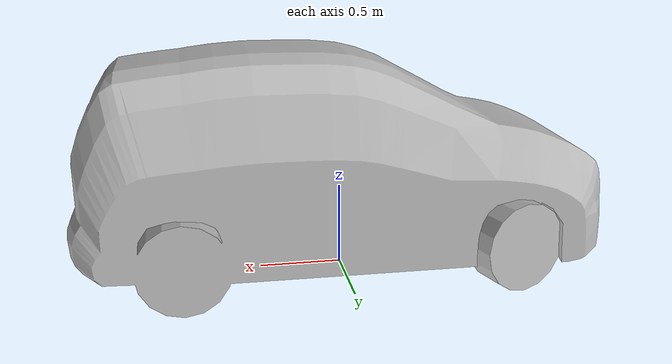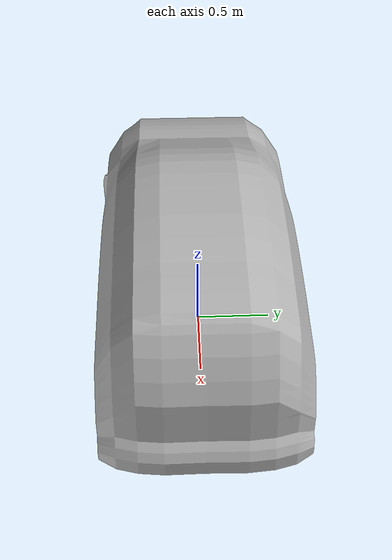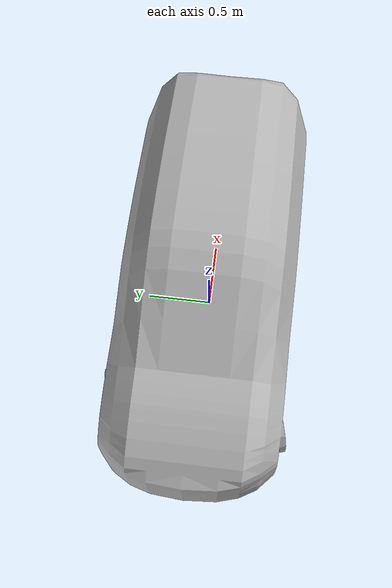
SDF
<?xml version="1.0" ?>
<sdf version="1.5">
  <model name="car_low_poly">
    <static>true</static>
    <link name="link">
      <collision name="collision">
        <surface>
          <friction>
          <ode>
            <mu>0.7</mu>
          </ode>
          </friction>
          <contact>
          <ode>
            <soft_cfm>1</soft_cfm>
            <kp>1000000</kp>
            <kd>1</kd>
            <max_vel>0.000001</max_vel>
            <min_depth>0.01</min_depth>
          </ode>
          </contact>
        </surface>

        <geometry>
          <mesh>
            <uri>model://car_low_poly/car_low_poly.dae</uri>
            <scale>1 1 1</scale>
          </mesh>
        </geometry>
      </collision>

      <visual name="visual">
        <geometry>
          <mesh>
            <uri>model://car_low_poly/car_low_poly.dae</uri>
            <scale>1 1 1</scale>
          </mesh>
        </geometry>
      </visual>

    </link>
  </model>
</sdf>
